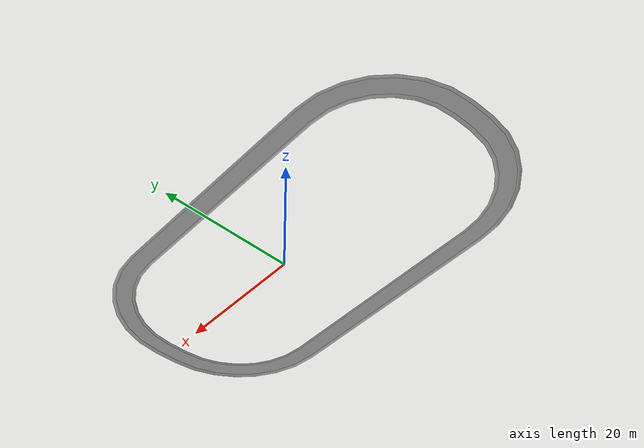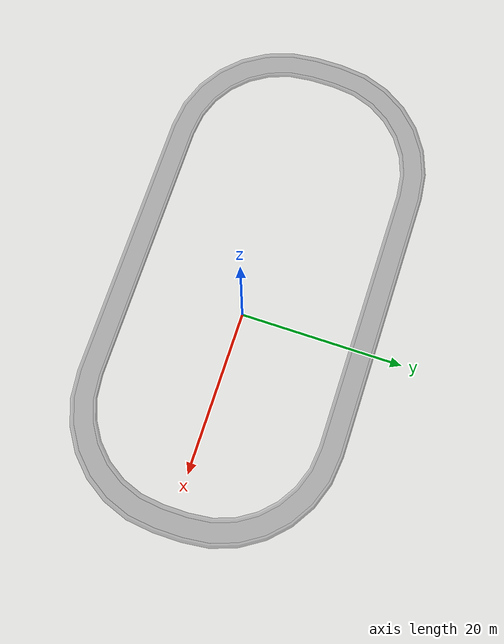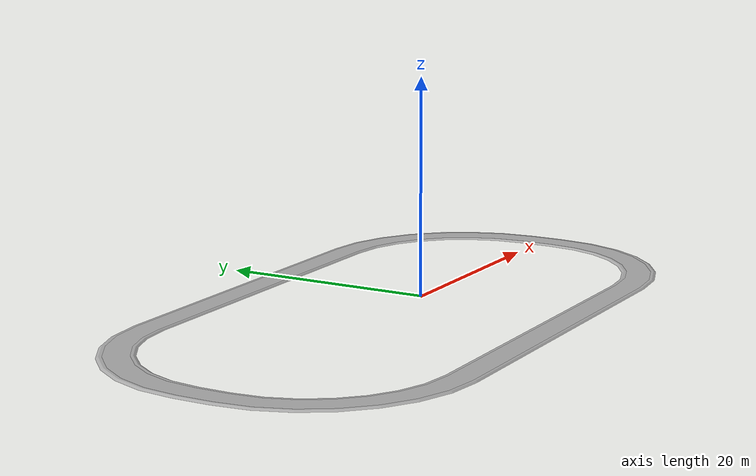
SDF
<?xml version='1.0'?>
<sdf version='1.6'>

  <model name='aws_Track_05_border'>

     <link name='body_border'>
      <pose frame=''>0 0 0 0 -0 0</pose>
      <self_collide>0</self_collide>
      <kinematic>0</kinematic>
      <gravity>1</gravity>
      <inertial>
        <mass>1000</mass>
        <pose frame=''>0 0 0 0 -0 0</pose>
        <inertia>
          <ixx>1</ixx>
          <ixy>0</ixy>
          <ixz>0</ixz>
          <iyy>1</iyy>
          <iyz>0</iyz>
          <izz>1</izz>
        </inertia>
      </inertial>
      <visual name='visual'>
        <geometry>
          <mesh>
            <uri>file://models/aws_robomaker_racetrack_Track_05/meshes/aws_Track_05_visual_border.obj</uri>
            <scale>1 1 1</scale>
          </mesh>
        </geometry>
        <material>
          <shader type='pixel'>
            <normal_map>__default__</normal_map>
          </shader>
        </material>
        <pose frame=''>0 0 0 0 -0 0</pose>
        <cast_shadows>1</cast_shadows>
        <transparency>0</transparency>
        <meta>
          <layer>0</layer>
        </meta>
      </visual>

       <collision name='collision_0'>
        <laser_retro>0</laser_retro>
        <max_contacts>10</max_contacts>
        <pose frame=''>0 0 0 0 -0 0</pose>
        <geometry>
          <mesh>
            <uri>file://models/aws_robomaker_racetrack_Track_05/meshes/aws_Track_05_visual_border.obj</uri>
            <scale>1 1 1</scale>
          </mesh>
        </geometry>
        <surface>
          <friction>
            <ode>
              <mu>1</mu>
              <mu2>1</mu2>
              <fdir1>0 0 0</fdir1>
              <slip1>0</slip1>
              <slip2>0</slip2>
            </ode>
            <torsional>
              <coefficient>1</coefficient>
              <patch_radius>0</patch_radius>
              <surface_radius>0</surface_radius>
              <use_patch_radius>1</use_patch_radius>
              <ode>
                <slip>0</slip>
              </ode>
            </torsional>
          </friction>
          <bounce>
            <restitution_coefficient>0</restitution_coefficient>
            <threshold>1e+06</threshold>
          </bounce>
          <contact>
            <collide_without_contact>0</collide_without_contact>
            <collide_without_contact_bitmask>1</collide_without_contact_bitmask>
            <collide_bitmask>1</collide_bitmask>
            <ode>
              <soft_cfm>0</soft_cfm>
              <soft_erp>0.2</soft_erp>
              <kp>1e+13</kp>
              <kd>1</kd>
              <max_vel>0.01</max_vel>
              <min_depth>0</min_depth>
            </ode>
            <bullet>
              <split_impulse>1</split_impulse>
              <split_impulse_penetration_threshold>-0.01</split_impulse_penetration_threshold>
              <soft_cfm>0</soft_cfm>
              <soft_erp>0.2</soft_erp>
              <kp>1e+13</kp>
              <kd>1</kd>
            </bullet>
          </contact>
        </surface>
      </collision>

    </link>
  </model>

   <model name='aws_Track_05_border'>

     <link name='body_border'>
      <pose frame=''>0 0 0 0 -0 0</pose>
      <self_collide>0</self_collide>
      <kinematic>0</kinematic>
      <gravity>1</gravity>
      <inertial>
        <mass>1000</mass>
        <pose frame=''>0 0 0 0 -0 0</pose>
        <inertia>
          <ixx>1</ixx>
          <ixy>0</ixy>
          <ixz>0</ixz>
          <iyy>1</iyy>
          <iyz>0</iyz>
          <izz>1</izz>
        </inertia>
      </inertial>
      <visual name='visual'>
        <geometry>
          <mesh>
            <uri>file://models/aws_robomaker_racetrack_Track_05/meshes/aws_Track_05_visual_track.obj</uri>
            <scale>1 1 1</scale>
          </mesh>
        </geometry>
        <material>
          <shader type='pixel'>
            <normal_map>__default__</normal_map>
          </shader>
        </material>
        <pose frame=''>0 0 0 0 -0 0</pose>
        <cast_shadows>1</cast_shadows>
        <transparency>0</transparency>
        <meta>
          <layer>0</layer>
        </meta>
      </visual>
       <collision name='collision_0'>
        <laser_retro>0</laser_retro>
        <max_contacts>10</max_contacts>
        <pose frame=''>0 0 0 0 -0 0</pose>
        <geometry>
          <mesh>
            <uri>file://models/aws_robomaker_racetrack_Track_05/meshes/aws_Track_05_visual_track.obj</uri>
            <scale>1 1 1</scale>
          </mesh>
        </geometry>
        <surface>
          <friction>
            <ode>
              <mu>1</mu>
              <mu2>1</mu2>
              <fdir1>0 0 0</fdir1>
              <slip1>0</slip1>
              <slip2>0</slip2>
            </ode>
            <torsional>
              <coefficient>1</coefficient>
              <patch_radius>0</patch_radius>
              <surface_radius>0</surface_radius>
              <use_patch_radius>1</use_patch_radius>
              <ode>
                <slip>0</slip>
              </ode>
            </torsional>
          </friction>
          <bounce>
            <restitution_coefficient>0</restitution_coefficient>
            <threshold>1e+06</threshold>
          </bounce>
          <contact>
            <collide_without_contact>0</collide_without_contact>
            <collide_without_contact_bitmask>1</collide_without_contact_bitmask>
            <collide_bitmask>1</collide_bitmask>
            <ode>
              <soft_cfm>0</soft_cfm>
              <soft_erp>0.2</soft_erp>
              <kp>1e+13</kp>
              <kd>1</kd>
              <max_vel>0.01</max_vel>
              <min_depth>0</min_depth>
            </ode>
            <bullet>
              <split_impulse>1</split_impulse>
              <split_impulse_penetration_threshold>-0.01</split_impulse_penetration_threshold>
              <soft_cfm>0</soft_cfm>
              <soft_erp>0.2</soft_erp>
              <kp>1e+13</kp>
              <kd>1</kd>
            </bullet>
          </contact>
        </surface>
      </collision>
    </link>
  </model>
</sdf>
